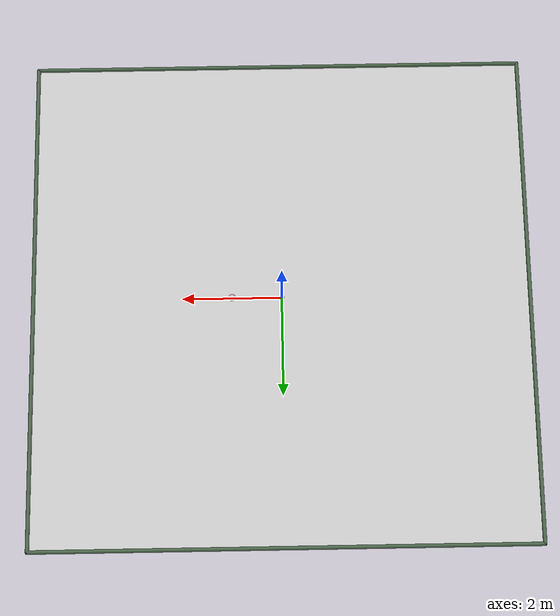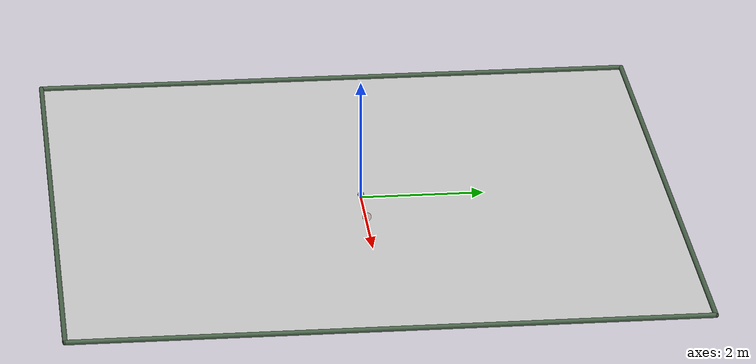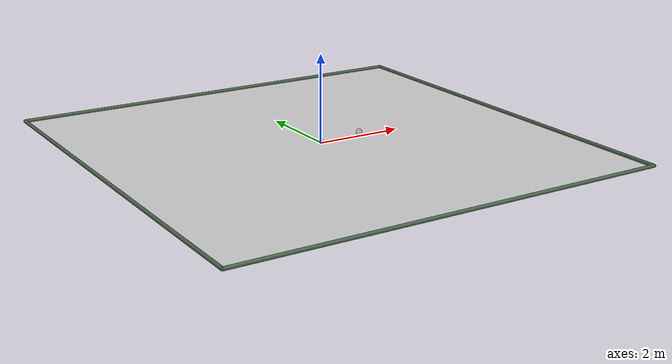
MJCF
<!-- Author + Copyright (C) Aravind Rajeswaran, rajeswaran.aravind@gmail.com.
See LICENSE file for legal notices. LICENSE must be kept together with this file. -->
<mujoco model="PointMass">
    <compiler inertiafromgeom="true" angle="radian" />
    <default>
        <joint armature="0.0" damping="0.0" limited="true"/>
        <geom friction="0.5 0.5 0.5" rgba="0.7 0.7 0 1"/>
        <motor ctrllimited="true" ctrlrange="-5.0 5.0" />
    </default>
    <option gravity="0 0 -9.81" integrator="RK4" timestep="0.01"/>

    <worldbody>
        <!-- Arena -->
        <geom name="ground" pos="0 0 0" rgba="0.8 0.8 0.8 1" size="5 5 0.1" type="plane" mass="10" priority="0"/>
        <geom fromto="-5 -5 .02  5 -5 .02" name="sideS" rgba="0.3 0.4 0.3 1.0" size=".04" type="capsule" mass="10"/>
        <geom fromto=" 5 -5 .02  5  5 .02" name="sideE" rgba="0.3 0.4 0.3 1.0" size=".04" type="capsule" mass="10"/>
        <geom fromto="-5  5 .02  5  5 .02" name="sideN" rgba="0.3 0.4 0.3 1.0" size=".04" type="capsule" mass="10"/>
        <geom fromto="-5 -5 .02 -5  5 .02" name="sideW" rgba="0.3 0.4 0.3 1.0" size=".04" type="capsule" mass="10"/>

        <!-- Agent -->
        <body name="agent" pos="0 0 0.05">
            <joint axis="1 0 0" name="agent_x" pos="0 0 0" range="-10 10" stiffness="0" type="slide"/>
            <joint axis="0 1 0" name="agent_y" pos="0 0 0" range="-10 10" stiffness="0" type="slide"/>
            <joint axis="0 0 1" name="agent_z" pos="0 0 0" range="-10 10" stiffness="0" type="slide"/>
            <geom name="agent" pos="0 0 0" rgba="0.2 0.2 0.6 1" size=".05" type="sphere" contype="3"/>
        </body>

        <!-- Target -->
        <site name="target" pos="1.0 0 .1" rgba="0.6 0.2 0.2 0.2" size=".07" type="sphere" />

    </worldbody>

    <actuator>
        <motor gear="1.0" joint="agent_x"/>
    </actuator>

</mujoco>
